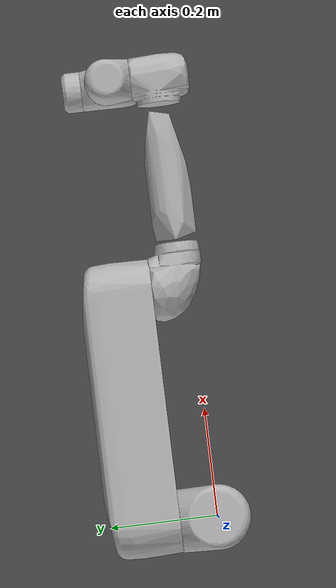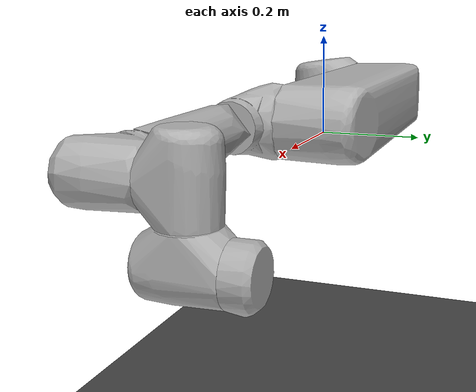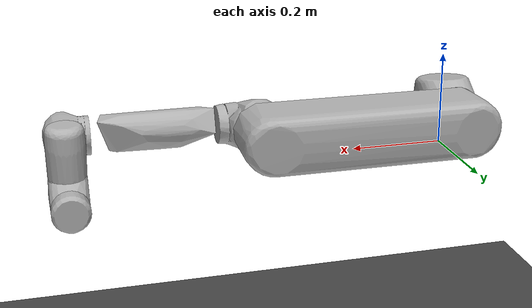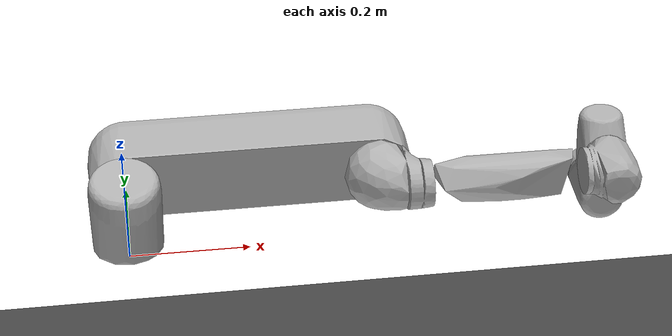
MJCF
<mujoco model="ur5">
    <compiler angle="radian" meshdir="meshes/ur5/"/>
    <size njmax="500" nconmax="100"/>
    <option timestep="0.005" iterations="50" solver="Newton" tolerance="1e-10"/>
    <visual>
        <rgba haze=".3 .3 .3 1"/>
    </visual>
    <asset>
        <mesh name="base" file="base.stl"/>
        <mesh name="shoulder" file="shoulder.stl"/>
        <mesh name="upperarm" file="upperarm.stl"/>
        <mesh name="forearm" file="forearm.stl"/>
        <mesh name="wrist1" file="wrist1.stl"/>
        <mesh name="wrist2" file="wrist2.stl"/>
        <mesh name="wrist3" file="wrist3.stl"/>
    </asset>
    <asset>
        <texture type="skybox" builtin="gradient" rgb1="0.6 0.6 0.6" rgb2="0 0 0" width="512" height="512"/>
        <texture name="texplane" type="2d" builtin="checker" rgb1=".25 .25 .25" rgb2=".3 .3 .3" width="512" height="512"
                 mark="cross" markrgb=".8 .8 .8"/>
        <material name="matplane" reflectance="0.3" texture="texplane" texrepeat="1 1" texuniform="true"/>
    </asset>
    <worldbody>
        <geom name="floor" pos="0 0 -0.5" size="0 0 1" type="plane" material="matplane"/>
        <light directional="true" diffuse=".8 .8 .8" specular=".2 .2 .2" pos="0 0 5" dir="0 0 -1"/>
        <body name="shoulder_link" pos="0 0 0.089159">
            <inertial pos="0 0 0" mass="3.7" diaginertia="0.0102675 0.0102675 0.00666"/>
            <joint name="shoulder_pan_joint" pos="0 0 0" axis="0 0 1" limited="true" range="-3.14159 3.14159"/>
            <geom type="mesh" rgba="0.7 0.7 0.7 1" mesh="shoulder"/>
            <body name="upper_arm_link" pos="0 0.13585 0" quat="0.707107 0 0.707107 0">
                <inertial pos="0 0 0.28" mass="8.393" diaginertia="0.226891 0.226891 0.0151074"/>
                <joint name="shoulder_lift_joint" pos="0 0 0" axis="0 1 0" limited="true" range="-3.14159 3.14159"/>
                <geom type="mesh" rgba="0.7 0.7 0.7 1" mesh="upperarm"/>
                <body name="forearm_link" pos="0 -0.1197 0.425">
                    <inertial pos="0 0 0.25" mass="2.275" diaginertia="0.0494433 0.0494433 0.004095"/>
                    <joint name="elbow_joint" pos="0 0 0" axis="0 1 0" limited="true" range="-3.14159 3.14159"/>
                    <geom type="mesh" rgba="0.7 0.7 0.7 1" mesh="forearm"/>
                    <body name="wrist_1_link" pos="0 0 0.39225" quat="0.707107 0 0.707107 0">
                        <inertial pos="0 0 0" quat="0.5 0.5 -0.5 0.5" mass="1.219"
                                  diaginertia="0.21942 0.111173 0.111173"/>
                        <joint name="wrist_1_joint" pos="0 0 0" axis="0 1 0" limited="true" range="-3.14159 3.14159"/>
                        <geom type="mesh" rgba="0.7 0.7 0.7 1" mesh="wrist1"/>
                        <body name="wrist_2_link" pos="0 0.093 0">
                            <inertial pos="0 0 0" quat="0.5 0.5 -0.5 0.5" mass="1.219"
                                      diaginertia="0.21942 0.111173 0.111173"/>
                            <joint name="wrist_2_joint" pos="0 0 0" axis="0 0 1" limited="true"
                                   range="-3.14159 3.14159"/>
                            <geom type="mesh" rgba="0.7 0.7 0.7 1" mesh="wrist2"/>
                            <body name="wrist_3_link" pos="0 0 0.09465">
                                <inertial pos="0 0.000382742 0" quat="0.5 0.5 -0.5 0.5" mass="0.1889"
                                          diaginertia="0.0338272 0.0171417 0.0171365"/>
                                <joint name="wrist_3_joint" pos="0 0 0" axis="0 1 0" limited="true"
                                       range="-3.14159 3.14159"/>
                                <geom type="mesh" rgba="0.7 0.7 0.7 1" mesh="wrist3"/>
                                <geom size="0.005 0.005 0.005" pos="0 0.0723 0" quat="0.707107 0 0 0.707107"
                                      type="box"/>
                            </body>
                        </body>
                    </body>
                </body>
            </body>
        </body>
    </worldbody>
</mujoco>
